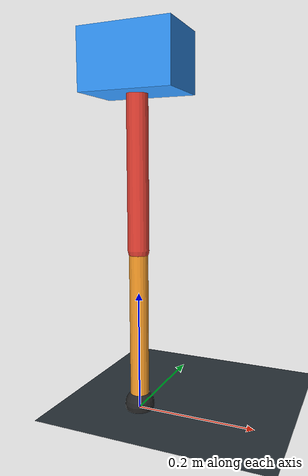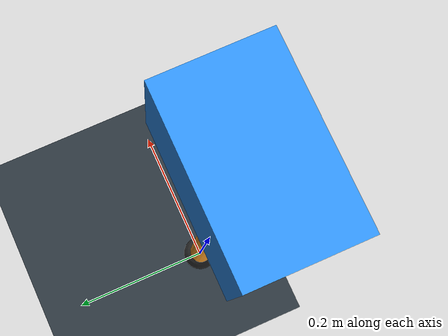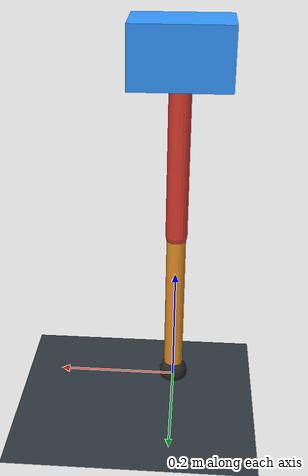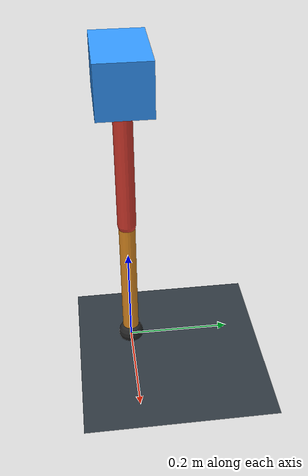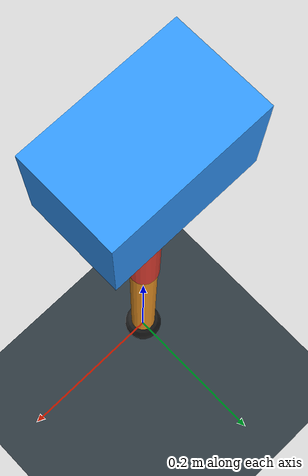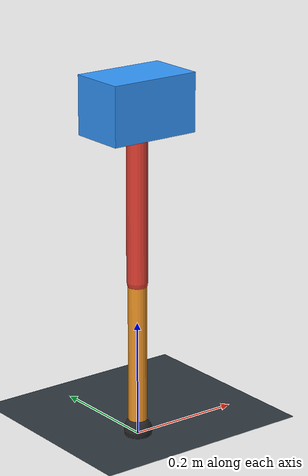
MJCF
<mujoco model="single_axis_two_bar">
  <compiler angle="radian" inertiafromgeom="true"/>
  <option timestep="0.001" integrator="implicitfast" gravity="0 0 -9.81"/>
  <default>
    <joint damping="0.08"/>
    <geom friction="1.2 0.01 0.0001" condim="3"/>
  </default>
  <worldbody>
    <geom name="floor" type="plane" size="5 5 0.1" rgba="0.18 0.22 0.25 1"/>
    <body name="carriage" pos="0 0 0.5776125365905367">
      <joint name="pole_slide" type="slide" axis="0 0 1"/>
      <geom name="payload" type="box" size="0.08 0.05 0.05" mass="3.433815440602215" rgba="0.2 0.6 1 1"/>
      <body name="thigh" pos="0 0 0">
        <joint name="hip" type="hinge" axis="0 1 0"/>
        <geom name="thigh_link" type="capsule" fromto="0 0 0 0 0 -0.30430489026288554" size="0.018" mass="0.21682125534666147" rgba="0.9 0.25 0.2 1"/>
        <body name="shank" pos="0 0 -0.30430489026288554">
          <joint name="knee" type="hinge" axis="0 1 0"/>
          <geom name="shank_link" type="capsule" fromto="0 0 0 0 0 -0.26539875570673993" size="0.016" mass="0.1891001203761977" rgba="0.95 0.6 0.15 1"/>
          <geom name="foot" type="sphere" pos="0 0 -0.26539875570673993" size="0.025" mass="0.03" rgba="0.15 0.15 0.15 1"/>
          <site name="toe" pos="0 0 -0.26539875570673993" size="0.008"/>
        </body>
      </body>
    </body>
  </worldbody>
  <actuator>
    <motor name="hip_motor" joint="hip" ctrlrange="-49.961565459365644 49.961565459365644"/>
    <motor name="knee_motor" joint="knee" ctrlrange="-159.55051541275498 159.55051541275498"/>
  </actuator>
</mujoco>
